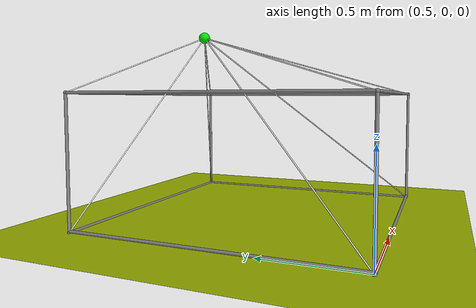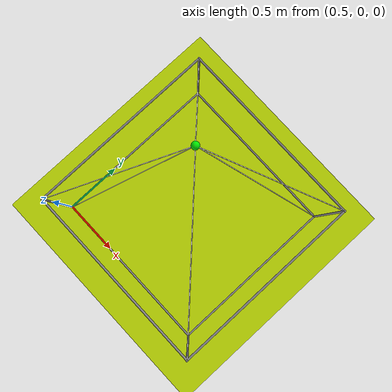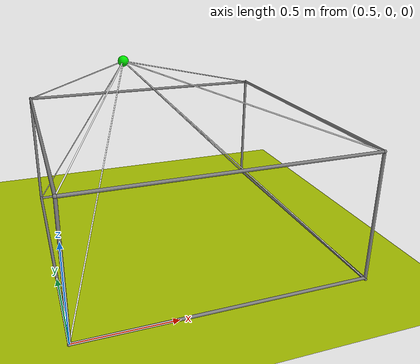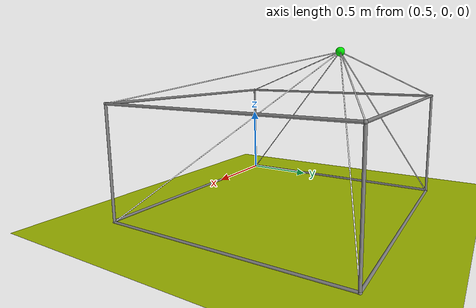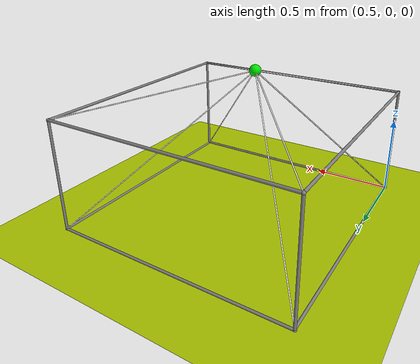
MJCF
<mujoco model="sphereCDPR_3D">
   <compiler inertiafromgeom="auto" coordinate="local" />
    <option gravity="0 0 -9.81" timestep="0.01" integrator="RK4" solver="Newton" />

   <asset>
        <texture name="ground_tex" type="2d" builtin="checker" rgb1="0.8 0.8 0.8" rgb2="0.6 0.6 0.6" width="100" height="100" />
        <material name="collision_mat" />
        <texture type="skybox" builtin="gradient" rgb1=".3 .5 .7" rgb2="0 0 0" width="512" height="512"/>
        <texture name="body" type="cube" builtin="flat" mark="cross" width="127" height="1278"
             rgb1="0.8 0.6 0.4" rgb2="0.8 0.6 0.4" markrgb="1 1 1" random="0.01"/>
        <material name="body" texture="body" texuniform="true" rgba="0.8 0.6 .4 1"/>
        <texture name="grid" type="2d" builtin="checker" width="512" height="512" rgb1=".1 .2 .3" rgb2=".2 .3 .4"/>
        <material name="grid" texture="grid" texrepeat="1 1" texuniform="true" reflectance=".2"/>
    </asset>

    <visual>
    <map force="0.1" zfar="30"/>
    <rgba haze="0.15 0.25 0.35 1"/>
    <quality shadowsize="4096"/>
    <global offwidth="800" offheight="800"/>
  </visual>

   <worldbody>

      <geom type="plane" size="10 10 0.1" rgba="0.7 0.8 0 0.7" friction="1 0.005" material="grid" condim="3"/>
      <light name="spotlight" mode="targetbodycom"
      	target="end_effector" diffuse=".8 .8 .8" specular="0.3 0.3 0.3" pos="0 -20 4" cutoff="10"/>
      <body name="end_effector" pos="1 1 1">
         <joint type="free"/>
         <geom type="sphere" size=".03" rgba="0 .9 0 1" material="collision_mat" friction="1 0.005" mass="0.5" condim="1"/>
         <light name="top" pos="0 0 2" mode="trackcom"/>
         <site name="endB0" pos="0.0 0.0 0.0" type="sphere" size="0.001"/>
      </body>
      <body pos="0 0 0">
         <geom type="cylinder" fromto="0.5 0 0.7  0.5 0 0" size="0.008"/>
         <site name="endC0" pos="0.5 0 0.7" type="sphere" size="0.01"/>
         <site name="endC1" pos="0.5 0 0.0" type="sphere" size="0.01"/>
         <body>
            <geom type="cylinder" fromto="0.5 0 0.008  0.5 1.5 0.008" size="0.008"/>
            <body>
               <geom type="cylinder" fromto="0.5 1.5 0.7  0.5 1.5 0" size="0.008"/>
               <site name="endC2" pos="0.5 1.5 0.7" type="sphere" size="0.01"/>
               <site name="endC3" pos="0.5 1.5 0.0" type="sphere" size="0.01"/>
               <body>
                  <geom type="cylinder" fromto="0.5 1.5 0.7  2 1.5 0.7" size="0.008"/>
                  <geom type="cylinder" fromto="0.5 1.5 0  2 1.5 0" size="0.008"/>
               </body>
            </body>
         </body>
         <body>
            <geom type="cylinder" fromto="0.5 0 0.7  2 0 0.7" size="0.008"/>
         </body>
         <body>
            <geom type="cylinder" fromto="0.5 0 0.7  0.5 1.5 0.7" size="0.008"/>
         </body>
         <body>
            <geom type="cylinder" fromto="0.5 0 0  2 0 0.008" size="0.008"/>
            <body>
               <geom type="cylinder" fromto="2 0 0.7  2 0 0" size="0.008"/>
               <body>
                  <geom type="cylinder" fromto="2 0 0.7  2 1.5 0.7" size="0.008"/>
                  <geom type="cylinder" fromto="2 0 0  2 1.5 0" size="0.008"/>
                  <site name="endC4" pos="2 0 0.7" type="sphere" size="0.01"/>
                  <site name="endC5" pos="2 0 0.0" type="sphere" size="0.01"/>
                  <body>
                     <geom type="cylinder" fromto="2 1.5 0.7  2 1.5 0" size="0.008"/>
                     <site name="endC6" pos="2 1.5 0.7" type="sphere" size="0.01"/>
                     <site name="endC7" pos="2 1.5 0.0" type="sphere" size="0.01"/>
                  </body>
               </body>
            </body>
         </body>
      </body>
   </worldbody>
   <tendon>
        <spatial name="Wt" limited="true" range="0 0.9" width="0.003" material="collision_mat">
            <site site="endC0"/>
            <site site="endB0"/>
        </spatial>
        <spatial name="Wb" limited="true" range="0 0.9" width="0.003" material="collision_mat">
            <site site="endC2"/>
            <site site="endB0"/>
        </spatial>
        <spatial name="Et" limited="true" range="0 0.9" width="0.003" material="collision_mat">
            <site site="endC4"/>
            <site site="endB0"/>
        </spatial>
        <spatial name="Eb" limited="true" range="0 0.9" width="0.003" material="collision_mat">
            <site site="endC6"/>
            <site site="endB0"/>
        </spatial>
        <spatial name="Nt" limited="true" range="0 0.9" width="0.003" material="collision_mat">
            <site site="endC1"/>
            <site site="endB0"/>
        </spatial>
        <spatial name="Nb" limited="true" range="0 0.9" width="0.003" material="collision_mat">
            <site site="endC3"/>
            <site site="endB0"/>
        </spatial>
        <spatial name="St" limited="true" range="0 0.9" width="0.003" material="collision_mat">
            <site site="endC5"/>
            <site site="endB0"/>
        </spatial>
        <spatial name="Sb" limited="true" range="0 0.9" width="0.003" material="collision_mat">
            <site site="endC7"/>
            <site site="endB0"/>
        </spatial>
    </tendon>
    <actuator>
        <motor name="Wt" tendon="Wt" gear="20000"/>
        <motor name="Wb" tendon="Wb" gear="20000"/>
        <motor name="Et" tendon="Et" gear="20000"/>
        <motor name="Eb" tendon="Eb" gear="20000"/>
        <motor name="St" tendon="St" gear="20000"/>
        <motor name="Sb" tendon="Sb" gear="20000"/>
        <motor name="Nt" tendon="Nt" gear="20000"/>
        <motor name="Nb" tendon="Nb" gear="20000"/>
    </actuator>
</mujoco>
